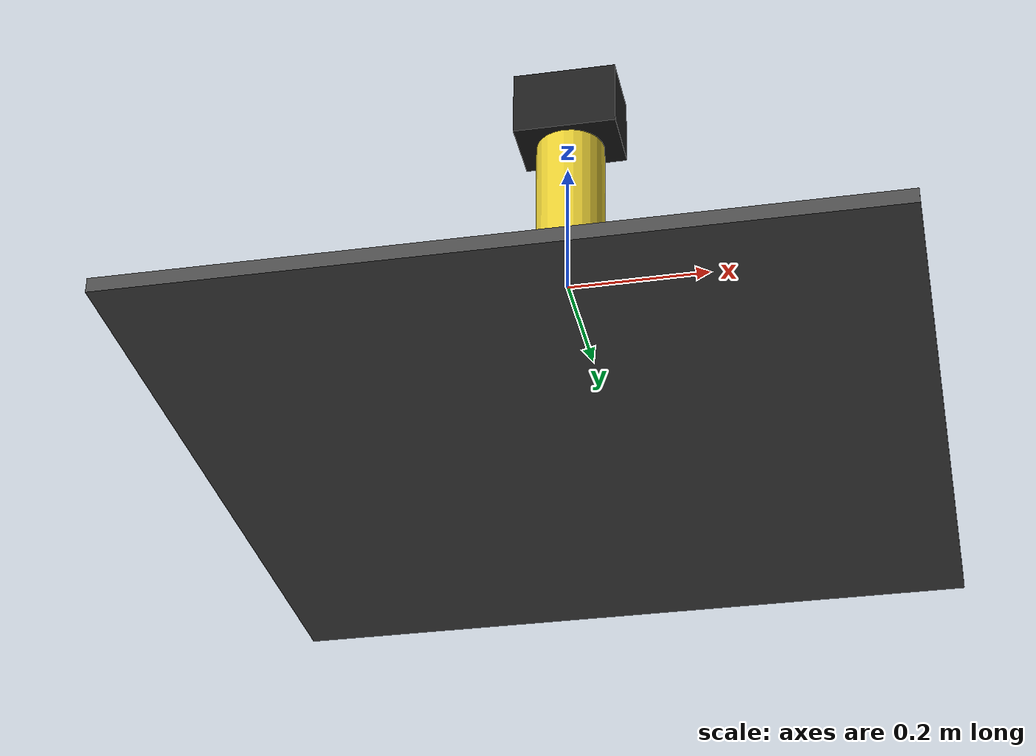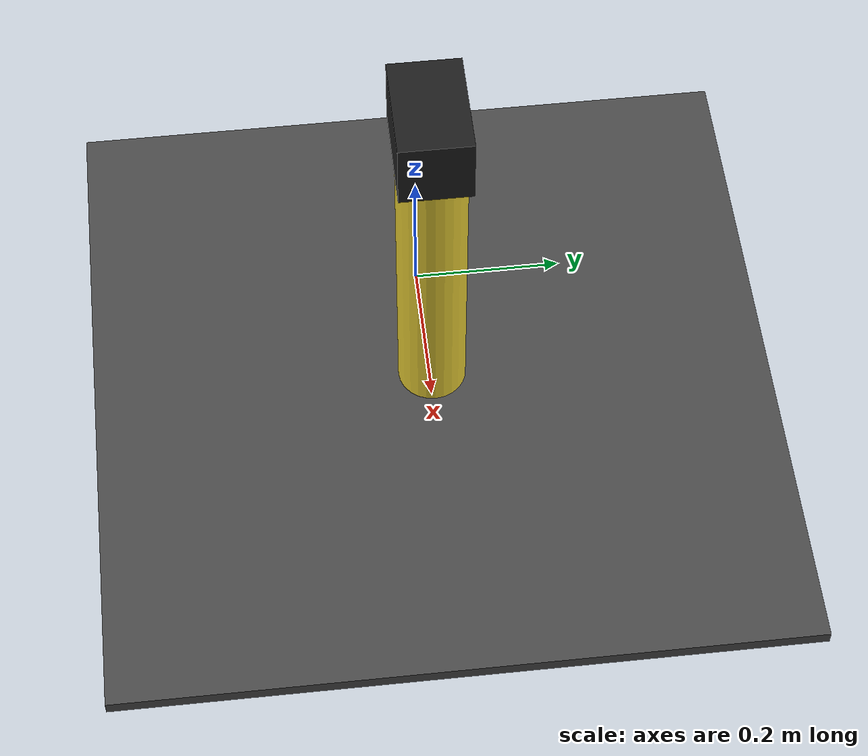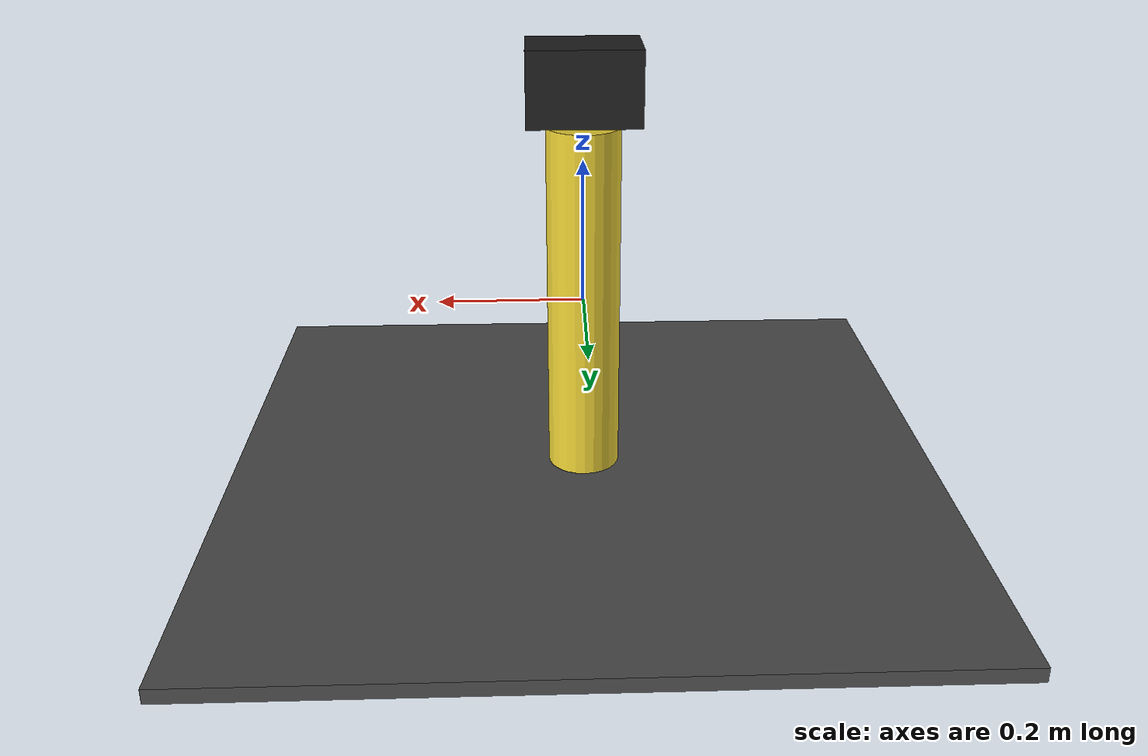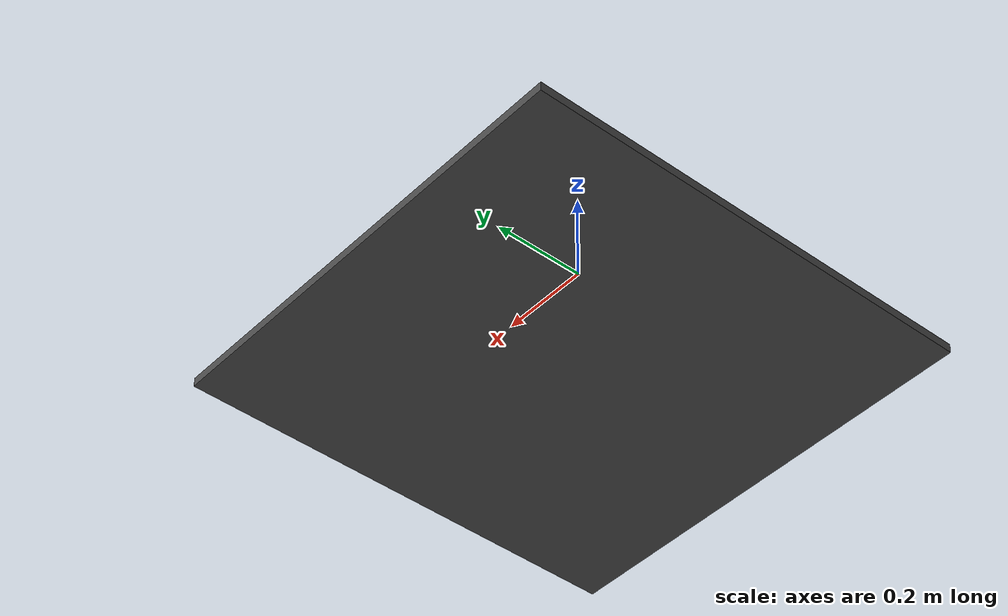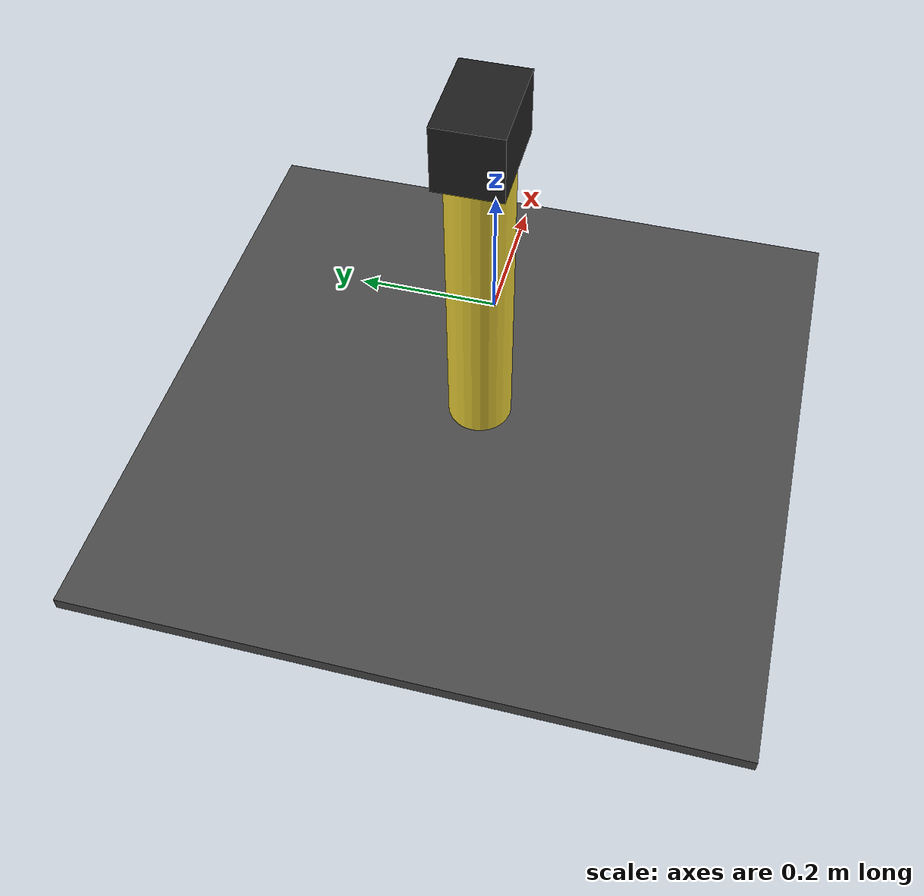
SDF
<?xml version='1.0'?>
<sdf version='1.7'>
  <model name='big_gun2'>
    <static>0</static>
    <allow_auto_disable>1</allow_auto_disable>

    <link name='link_0'>
      <inertial>
        <mass>192.808</mass>
        <inertia>
          <ixx>16.0772</ixx>
          <ixy>0</ixy>
          <ixz>0</ixz>
          <iyy>16.0772</iyy>
          <iyz>0</iyz>
          <izz>32.1347</izz>
        </inertia>
        <pose>0 0 0 0 -0 0</pose>
      </inertial>
      <pose>-2.9e-05 0.022288 -0.246578 0 -0 0</pose>
      <gravity>1</gravity>
      <self_collide>0</self_collide>
      <kinematic>0</kinematic>
      <enable_wind>0</enable_wind>
      <visual name='visual'>
        <pose>0 0 0.25 0 -0 0</pose>
        <geometry>
          <cylinder>
            <radius>0.05</radius>
            <length>0.5</length>
          </cylinder>
        </geometry>
        <material>
          <lighting>1</lighting>
          <script>
            <uri>file://media/materials/scripts/gazebo.material</uri>
            <name>Gazebo/ZincYellow</name>
          </script>
          <shader type='pixel'/>
        </material>
        <transparency>0</transparency>
        <cast_shadows>1</cast_shadows>
      </visual>
      <visual name='ModelPreview_0::link_0::visual_1'>
        <pose>0 0 0 0 -0 0</pose>
        <geometry>
          <box>
            <size>1 1 0.02</size>
          </box>
        </geometry>
        <material>
          <lighting>1</lighting>
          <script>
            <uri>file://media/materials/scripts/gazebo.material</uri>
            <name>Gazebo/DarkGrey</name>
          </script>
          <shader type='pixel'/>
        </material>
        <transparency>0</transparency>
        <cast_shadows>1</cast_shadows>
      </visual>
      <collision name='collision'>
        <laser_retro>0</laser_retro>
        <max_contacts>10</max_contacts>
        <pose>0 0 0 0 -0 0</pose>
        <geometry>
          <box>
            <size>1 1 0.02</size>
          </box>
        </geometry>
        <surface>
          <friction>
            <ode>
              <mu>1</mu>
              <mu2>1</mu2>
              <fdir1>0 0 0</fdir1>
              <slip1>0</slip1>
              <slip2>0</slip2>
            </ode>
            <torsional>
              <coefficient>1</coefficient>
              <patch_radius>0</patch_radius>
              <surface_radius>0</surface_radius>
              <use_patch_radius>1</use_patch_radius>
              <ode>
                <slip>0</slip>
              </ode>
            </torsional>
          </friction>
          <contact>
            <collide_without_contact>0</collide_without_contact>
            <collide_without_contact_bitmask>1</collide_without_contact_bitmask>
            <collide_bitmask>1</collide_bitmask>
            <ode>
              <soft_cfm>0</soft_cfm>
              <soft_erp>0.2</soft_erp>
              <kp>1e+13</kp>
              <kd>1</kd>
              <max_vel>0.01</max_vel>
              <min_depth>0</min_depth>
            </ode>
            <bullet>
              <split_impulse>1</split_impulse>
              <split_impulse_penetration_threshold>-0.01</split_impulse_penetration_threshold>
              <soft_cfm>0</soft_cfm>
              <soft_erp>0.2</soft_erp>
              <kp>1e+13</kp>
              <kd>1</kd>
            </bullet>
          </contact>
        </surface>
      </collision>
      <collision name='collision_1'>
        <laser_retro>0</laser_retro>
        <max_contacts>10</max_contacts>
        <pose>0 0 0.25 0 -0 0</pose>
        <geometry>
          <cylinder>
            <radius>0.05</radius>
            <length>0.5</length>
          </cylinder>
        </geometry>
        <surface>
          <friction>
            <ode>
              <mu>1</mu>
              <mu2>1</mu2>
              <fdir1>0 0 0</fdir1>
              <slip1>0</slip1>
              <slip2>0</slip2>
            </ode>
            <torsional>
              <coefficient>1</coefficient>
              <patch_radius>0</patch_radius>
              <surface_radius>0</surface_radius>
              <use_patch_radius>1</use_patch_radius>
              <ode>
                <slip>0</slip>
              </ode>
            </torsional>
          </friction>
          <contact>
            <collide_without_contact>0</collide_without_contact>
            <collide_without_contact_bitmask>1</collide_without_contact_bitmask>
            <collide_bitmask>1</collide_bitmask>
            <ode>
              <soft_cfm>0</soft_cfm>
              <soft_erp>0.2</soft_erp>
              <kp>1e+13</kp>
              <kd>1</kd>
              <max_vel>0.01</max_vel>
              <min_depth>0</min_depth>
            </ode>
            <bullet>
              <split_impulse>1</split_impulse>
              <split_impulse_penetration_threshold>-0.01</split_impulse_penetration_threshold>
              <soft_cfm>0</soft_cfm>
              <soft_erp>0.2</soft_erp>
              <kp>1e+13</kp>
              <kd>1</kd>
            </bullet>
          </contact>
        </surface>
      </collision>
    </link>
    <link name='link_2'>
      <inertial>
        <mass>4.63717</mass>
        <inertia>
          <ixx>0.0180888</ixx>
          <ixy>0</ixy>
          <ixz>0</ixz>
          <iyy>0.0180888</iyy>
          <iyz>0</iyz>
          <izz>0.00646458</izz>
        </inertia>
        <pose>0 0 0 0 -0 0</pose>
      </inertial>
      <pose>0 0.02 0.31 0 0 0</pose>
      <gravity>1</gravity>
      <self_collide>0</self_collide>
      <kinematic>0</kinematic>
      <enable_wind>0</enable_wind>
      <visual name='visual'>
        <pose>0 0 0 0 -0 0</pose>
        <geometry>
          <box>
            <size>.15 .1 .1</size>
          </box>
        </geometry>
        <material>
          <lighting>1</lighting>
          <script>
            <uri>file://media/materials/scripts/gazebo.material</uri>
            <name>Gazebo/Black</name>
          </script>
          <shader type='pixel'/>
        </material>
        <transparency>0</transparency>
        <cast_shadows>1</cast_shadows>
      </visual>
      <collision name='collision'>
        <laser_retro>0</laser_retro>
        <max_contacts>10</max_contacts>
        <pose>0 0 0 0 -0 0</pose>
        <geometry>
          <cylinder>
            <radius>0.052803</radius>
            <length>0.196075</length>
          </cylinder>
        </geometry>
        <surface>
          <friction>
            <ode>
              <mu>1</mu>
              <mu2>1</mu2>
              <fdir1>0 0 0</fdir1>
              <slip1>0</slip1>
              <slip2>0</slip2>
            </ode>
            <torsional>
              <coefficient>1</coefficient>
              <patch_radius>0</patch_radius>
              <surface_radius>0</surface_radius>
              <use_patch_radius>1</use_patch_radius>
              <ode>
                <slip>0</slip>
              </ode>
            </torsional>
          </friction>
          <contact>
            <collide_without_contact>0</collide_without_contact>
            <collide_without_contact_bitmask>1</collide_without_contact_bitmask>
            <collide_bitmask>1</collide_bitmask>
            <ode>
              <soft_cfm>0</soft_cfm>
              <soft_erp>0.2</soft_erp>
              <kp>1e+13</kp>
              <kd>1</kd>
              <max_vel>0.01</max_vel>
              <min_depth>0</min_depth>
            </ode>
            <bullet>
              <split_impulse>1</split_impulse>
              <split_impulse_penetration_threshold>-0.01</split_impulse_penetration_threshold>
              <soft_cfm>0</soft_cfm>
              <soft_erp>0.2</soft_erp>
              <kp>1e+13</kp>
              <kd>1</kd>
            </bullet>
          </contact>
        </surface>
      </collision>
    </link>

    <link name='bullet_spawner'>
      <pose>0 -0.1 -0.25 0 1.57 0</pose>
    </link>

    <joint name='link_0_JOINT_0' type='fixed'>
      <parent>link_0</parent>
      <child>link_2</child>
      <pose>0 0 -0.045 0 -0 0</pose>
      <axis>
        <xyz>0 1 0</xyz>
        <limit>
          <lower>-1.79769e+308</lower>
          <upper>1.79769e+308</upper>
          <effort>-1</effort>
          <velocity>-1</velocity>
        </limit>
        <dynamics>
          <spring_reference>0</spring_reference>
          <spring_stiffness>0</spring_stiffness>
          <damping>0</damping>
          <friction>0</friction>
        </dynamics>
      </axis>
      <physics>
        <ode>
          <limit>
            <cfm>0</cfm>
            <erp>0.2</erp>
          </limit>
          <suspension>
            <cfm>0</cfm>
            <erp>0.2</erp>
          </suspension>
        </ode>
      </physics>
    </joint>

    <plugin name="Gun2Plugin" filename="libGun2Plugin.so">
      <model name="olive"/>
    </plugin>
  </model>
</sdf>
